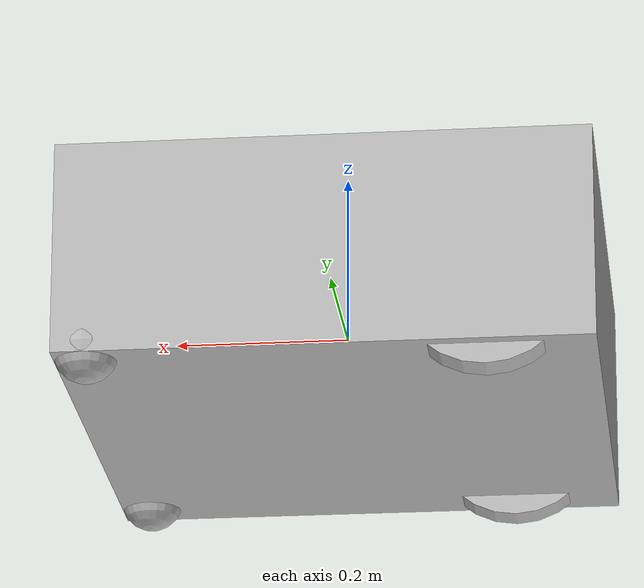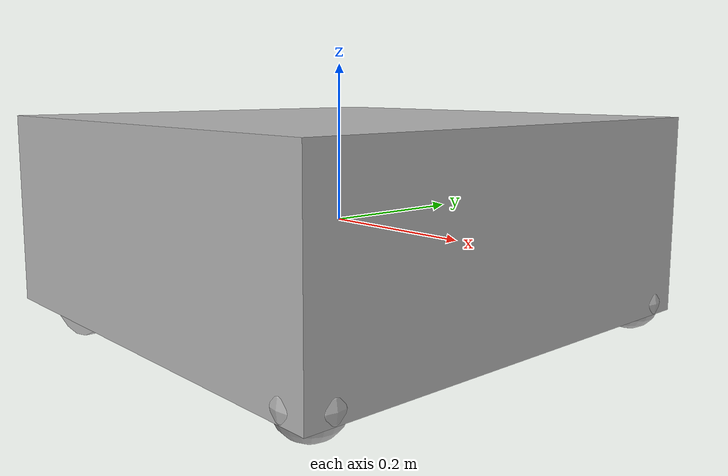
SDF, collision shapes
<?xml version='1.0'?>
<sdf version='1.6'>
  <model name='robotics_project'>
    <link name='body'>
      <pose frame=''>0 0 0 0 -0 0</pose>
      <inertial>
        <pose frame=''>0 0 0 0 -0 0</pose>
        <mass>10</mass>
        <inertia>
          <ixx>0</ixx>
          <ixy>0</ixy>
          <ixz>0</ixz>
          <iyy>0</iyy>
          <iyz>0.002064</iyz>
          <izz>1.05472</izz>
        </inertia>
      </inertial>
      <self_collide>0</self_collide>
      <kinematic>0</kinematic>
      <visual name='body_visual'>
        <pose frame=''>-0.3 0 -0.11 1.5707 -0 -1.5707</pose>
        <geometry>
          <mesh>
            <uri>model://test/Assembly5.stl</uri>
            <scale>0.01 0.01 0.01</scale>
          </mesh>
        </geometry>
        <cast_shadows>1</cast_shadows>
        <transparency>0</transparency>
        <material>
          <shader type='vertex'>
            <normal_map>__default__</normal_map>
          </shader>
        </material>
      </visual>
      <collision name='body'>
        <laser_retro>0</laser_retro>
        <max_contacts>10</max_contacts>
        <pose frame=''>0 0 0.01 0 -0 0</pose>
        <geometry>
          <box>
            <size>0.6 0.6 0.247</size>
          </box>
        </geometry>
        <surface>
          <friction>
            <ode>
              <mu>1</mu>
              <mu2>1</mu2>
              <fdir1>0 0 0</fdir1>
              <slip1>0</slip1>
              <slip2>0</slip2>
            </ode>
            <torsional>
              <coefficient>1</coefficient>
              <patch_radius>0</patch_radius>
              <surface_radius>0</surface_radius>
              <use_patch_radius>1</use_patch_radius>
              <ode>
                <slip>0</slip>
              </ode>
            </torsional>
          </friction>
          <bounce>
            <restitution_coefficient>0</restitution_coefficient>
            <threshold>1e+06</threshold>
          </bounce>
          <contact>
            <collide_without_contact>0</collide_without_contact>
            <collide_without_contact_bitmask>1</collide_without_contact_bitmask>
            <collide_bitmask>1</collide_bitmask>
            <ode>
              <soft_cfm>0</soft_cfm>
              <soft_erp>0.2</soft_erp>
              <kp>1e+13</kp>
              <kd>1</kd>
              <max_vel>0.01</max_vel>
              <min_depth>0</min_depth>
            </ode>
            <bullet>
              <split_impulse>1</split_impulse>
              <split_impulse_penetration_threshold>-0.01</split_impulse_penetration_threshold>
              <soft_cfm>0</soft_cfm>
              <soft_erp>0.2</soft_erp>
              <kp>1e+13</kp>
              <kd>1</kd>
            </bullet>
          </contact>
        </surface>
      </collision>
      <collision name='caster_2'>
        <laser_retro>0</laser_retro>
        <max_contacts>10</max_contacts>
        <pose frame=''>0.265 0.265 -0.1 0 -0 0</pose>
        <geometry>
          <sphere>
            <radius>0.0375</radius>
          </sphere>
        </geometry>
        <surface>
          <friction>
            <ode>
              <mu>0</mu>
              <mu2>0</mu2>
              <fdir1>0 0 0</fdir1>
              <slip1>1</slip1>
              <slip2>1</slip2>
            </ode>
            <torsional>
              <coefficient>1</coefficient>
              <patch_radius>0</patch_radius>
              <surface_radius>0</surface_radius>
              <use_patch_radius>1</use_patch_radius>
              <ode>
                <slip>0</slip>
              </ode>
            </torsional>
          </friction>
          <bounce>
            <restitution_coefficient>0</restitution_coefficient>
            <threshold>1e+06</threshold>
          </bounce>
          <contact>
            <collide_without_contact>0</collide_without_contact>
            <collide_without_contact_bitmask>1</collide_without_contact_bitmask>
            <collide_bitmask>1</collide_bitmask>
            <ode>
              <soft_cfm>0</soft_cfm>
              <soft_erp>0.2</soft_erp>
              <kp>1e+13</kp>
              <kd>1</kd>
              <max_vel>0.01</max_vel>
              <min_depth>0</min_depth>
            </ode>
            <bullet>
              <split_impulse>1</split_impulse>
              <split_impulse_penetration_threshold>-0.01</split_impulse_penetration_threshold>
              <soft_cfm>0</soft_cfm>
              <soft_erp>0.2</soft_erp>
              <kp>1e+13</kp>
              <kd>1</kd>
            </bullet>
          </contact>
        </surface>
      </collision>
      <collision name='caster_1'>
        <laser_retro>0</laser_retro>
        <max_contacts>10</max_contacts>
        <pose frame=''>0.265 -0.265 -0.1 0 -0 0</pose>
        <geometry>
          <sphere>
            <radius>0.0375</radius>
          </sphere>
        </geometry>
        <surface>
          <friction>
            <ode>
              <mu>0</mu>
              <mu2>0</mu2>
              <fdir1>0 0 0</fdir1>
              <slip1>1</slip1>
              <slip2>1</slip2>
            </ode>
            <torsional>
              <coefficient>1</coefficient>
              <patch_radius>0</patch_radius>
              <surface_radius>0</surface_radius>
              <use_patch_radius>1</use_patch_radius>
              <ode>
                <slip>0</slip>
              </ode>
            </torsional>
          </friction>
          <bounce>
            <restitution_coefficient>0</restitution_coefficient>
            <threshold>1e+06</threshold>
          </bounce>
          <contact>
            <collide_without_contact>0</collide_without_contact>
            <collide_without_contact_bitmask>1</collide_without_contact_bitmask>
            <collide_bitmask>1</collide_bitmask>
            <ode>
              <soft_cfm>0</soft_cfm>
              <soft_erp>0.2</soft_erp>
              <kp>1e+13</kp>
              <kd>1</kd>
              <max_vel>0.01</max_vel>
              <min_depth>0</min_depth>
            </ode>
            <bullet>
              <split_impulse>1</split_impulse>
              <split_impulse_penetration_threshold>-0.01</split_impulse_penetration_threshold>
              <soft_cfm>0</soft_cfm>
              <soft_erp>0.2</soft_erp>
              <kp>1e+13</kp>
              <kd>1</kd>
            </bullet>
          </contact>
        </surface>
      </collision>
    </link>
    <link name='wheel'>
      <pose frame=''>-0.178 -0.265 -0.0375 -1.5707 0 0</pose>
      <inertial>
        <mass>2.325</mass>
        <inertia>
          <ixx>0.145833</ixx>
          <ixy>0</ixy>
          <ixz>0</ixz>
          <iyy>0.145833</iyy>
          <iyz>0</iyz>
          <izz>0.125</izz>
        </inertia>
        <pose frame=''>0 0 0 0 -0 0</pose>
      </inertial>
      <self_collide>0</self_collide>
      <kinematic>0</kinematic>
      <collision name='collision'>
        <laser_retro>0</laser_retro>
        <max_contacts>10</max_contacts>
        <pose frame=''>0 0 0 0 -0 0</pose>
        <geometry>
          <cylinder>
            <radius>0.1</radius>
            <length>0.04</length>
          </cylinder>
        </geometry>
        <surface>
          <friction>
            <ode>
              <mu>1</mu>
              <mu2>1</mu2>
              <fdir1>0 0 0</fdir1>
              <slip1>0</slip1>
              <slip2>0</slip2>
            </ode>
            <torsional>
              <coefficient>1</coefficient>
              <patch_radius>0</patch_radius>
              <surface_radius>0</surface_radius>
              <use_patch_radius>1</use_patch_radius>
              <ode>
                <slip>0</slip>
              </ode>
            </torsional>
          </friction>
          <bounce>
            <restitution_coefficient>0</restitution_coefficient>
            <threshold>1e+06</threshold>
          </bounce>
          <contact>
            <collide_without_contact>0</collide_without_contact>
            <collide_without_contact_bitmask>1</collide_without_contact_bitmask>
            <collide_bitmask>1</collide_bitmask>
            <ode>
              <soft_cfm>0</soft_cfm>
              <soft_erp>0.2</soft_erp>
              <kp>1e+13</kp>
              <kd>1</kd>
              <max_vel>1</max_vel>
              <min_depth>0</min_depth>
            </ode>
            <bullet>
              <split_impulse>1</split_impulse>
              <split_impulse_penetration_threshold>-0.01</split_impulse_penetration_threshold>
              <soft_cfm>0</soft_cfm>
              <soft_erp>0.2</soft_erp>
              <kp>1e+13</kp>
              <kd>1</kd>
            </bullet>
          </contact>
        </surface>
      </collision>
    </link>
    <link name='wheel_clone'>
      <pose frame=''>-0.178 0.265 -0.0375 -1.5707 0 0</pose>
      <inertial>
        <mass>2.325</mass>
        <inertia>
          <ixx>0.145833</ixx>
          <ixy>0</ixy>
          <ixz>0</ixz>
          <iyy>0.145833</iyy>
          <iyz>0</iyz>
          <izz>0.125</izz>
        </inertia>
        <pose frame=''>0 0 0 0 -0 0</pose>
      </inertial>
      <self_collide>0</self_collide>
      <kinematic>0</kinematic>
      <collision name='collision'>
        <laser_retro>0</laser_retro>
        <max_contacts>10</max_contacts>
        <pose frame=''>0 0 0 0 -0 0</pose>
        <geometry>
          <cylinder>
            <radius>0.1</radius>
            <length>0.04</length>
          </cylinder>
        </geometry>
        <surface>
          <friction>
            <ode>
              <mu>1</mu>
              <mu2>1</mu2>
              <fdir1>0 0 0</fdir1>
              <slip1>0</slip1>
              <slip2>0</slip2>
            </ode>
            <torsional>
              <coefficient>1</coefficient>
              <patch_radius>0</patch_radius>
              <surface_radius>0</surface_radius>
              <use_patch_radius>1</use_patch_radius>
              <ode>
                <slip>0</slip>
              </ode>
            </torsional>
          </friction>
          <bounce>
            <restitution_coefficient>0</restitution_coefficient>
            <threshold>1e+06</threshold>
          </bounce>
          <contact>
            <collide_without_contact>0</collide_without_contact>
            <collide_without_contact_bitmask>1</collide_without_contact_bitmask>
            <collide_bitmask>1</collide_bitmask>
            <ode>
              <soft_cfm>0</soft_cfm>
              <soft_erp>0.2</soft_erp>
              <kp>1e+13</kp>
              <kd>1</kd>
              <max_vel>1</max_vel>
              <min_depth>0</min_depth>
            </ode>
            <bullet>
              <split_impulse>1</split_impulse>
              <split_impulse_penetration_threshold>-0.01</split_impulse_penetration_threshold>
              <soft_cfm>0</soft_cfm>
              <soft_erp>0.2</soft_erp>
              <kp>1e+13</kp>
              <kd>1</kd>
            </bullet>
          </contact>
        </surface>
      </collision>
    </link>
    <joint name='robot_wheel_left_joint' type='revolute'>
      <parent>body</parent>
      <child>wheel_clone</child>
      <pose frame=''>0 0 0 0 -0 0</pose>
      <axis>
        <xyz>0 0 1</xyz>
        <use_parent_model_frame>0</use_parent_model_frame>
        <limit>
          <lower>-1.79769e+308</lower>
          <upper>1.79769e+308</upper>
          <effort>-1</effort>
          <velocity>-1</velocity>
        </limit>
        <dynamics>
          <spring_reference>0</spring_reference>
          <spring_stiffness>0</spring_stiffness>
          <damping>0</damping>
          <friction>0</friction>
        </dynamics>
      </axis>
      <physics>
        <ode>
          <limit>
            <cfm>0</cfm>
            <erp>0.2</erp>
          </limit>
          <suspension>
            <cfm>0</cfm>
            <erp>0.2</erp>
          </suspension>
        </ode>
      </physics>
    </joint>
    <joint name='robot_wheel_right_joint' type='revolute'>
      <parent>body</parent>
      <child>wheel</child>
      <pose frame=''>0 0 0 0 -0 0</pose>
      <axis>
        <xyz>0 0 1</xyz>
        <use_parent_model_frame>0</use_parent_model_frame>
        <limit>
          <lower>-1.79769e+308</lower>
          <upper>1.79769e+308</upper>
          <effort>-1</effort>
          <velocity>-1</velocity>
        </limit>
        <dynamics>
          <spring_reference>0</spring_reference>
          <spring_stiffness>0</spring_stiffness>
          <damping>0</damping>
          <friction>0</friction>
        </dynamics>
      </axis>
      <physics>
        <ode>
          <limit>
            <cfm>0</cfm>
            <erp>0.2</erp>
          </limit>
          <suspension>
            <cfm>0</cfm>
            <erp>0.2</erp>
          </suspension>
        </ode>
      </physics>
    </joint>
    <static>0</static>
    <allow_auto_disable>1</allow_auto_disable>
    <plugin name='differential_drive_controller' filename='libgazebo_ros_diff_drive.so'>
      <alwaysOn>true</alwaysOn>
      <updateRate>20</updateRate>
      <leftJoint>robot_wheel_left_joint</leftJoint>
      <rightJoint>robot_wheel_right_joint</rightJoint>
      <wheelSeparation>0.53</wheelSeparation>
      <wheelDiameter>0.2</wheelDiameter>
      <torque>20</torque>
      <commandTopic>cmd_vel</commandTopic>
      <odometryTopic>odom</odometryTopic>
      <odometryFrame>odom</odometryFrame>
      <robotBaseFrame>base_footprint</robotBaseFrame>
    </plugin>
    <plugin name='model_angvel' filename='libplugin_angvel.so'/>
  </model>
</sdf>
